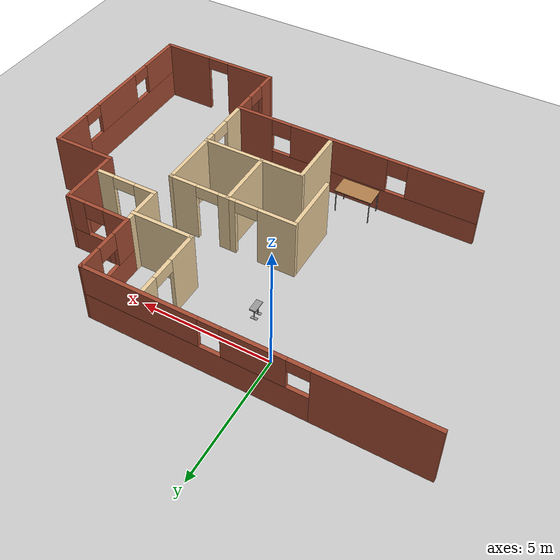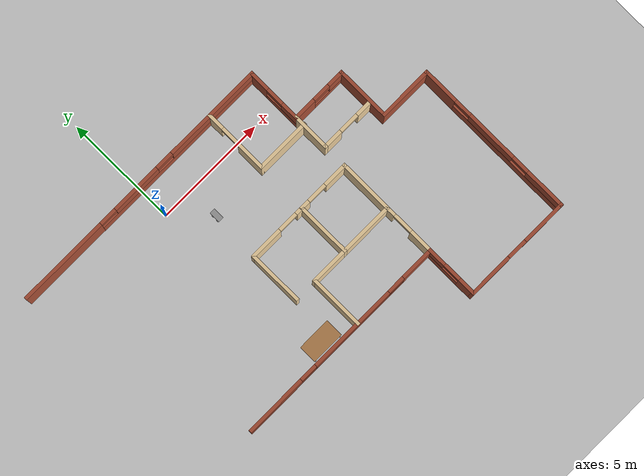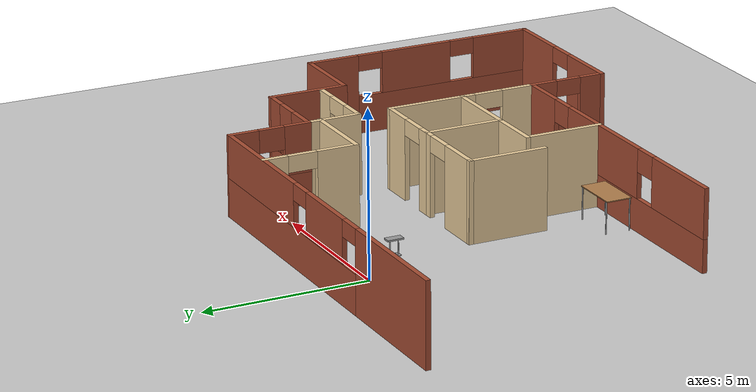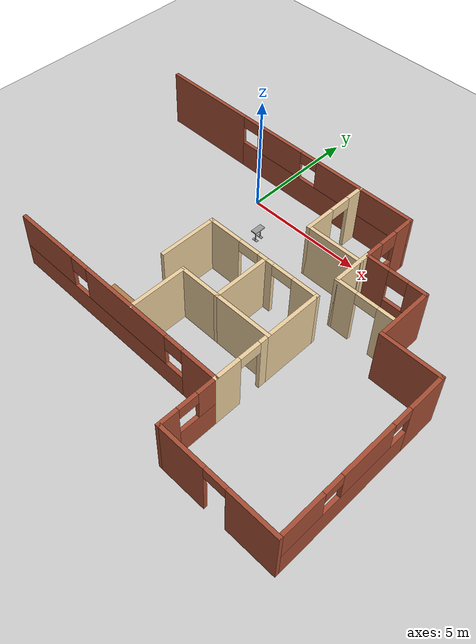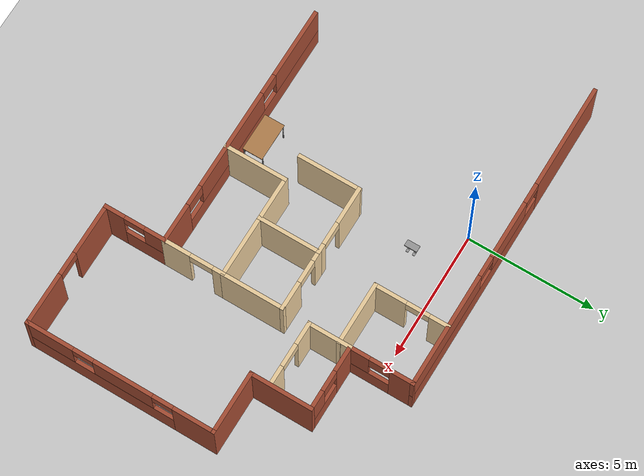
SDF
<sdf version="1.6">
 <world name="default">
  <model name="ground_plane">
   <static>1</static>
   <link name="link">
    <collision name="collision">
     <geometry><plane><normal>0 0 1</normal><size>100 100</size></plane></geometry>
     <surface>
      <contact><collide_bitmask>65535</collide_bitmask></contact>
      <friction><ode><mu>100</mu><mu2>50</mu2></ode></friction>
     </surface>
    </collision>
    <visual name="visual">
     <cast_shadows>0</cast_shadows>
     <geometry><plane><normal>0 0 1</normal><size>100 100</size></plane></geometry>
     <material>
      <script><uri>file://media/materials/scripts/gazebo.material</uri><name>Gazebo/Grey</name></script>
     </material>
    </visual>
   </link>
  </model>
  <model name="HumanoidRobot">
   <link name="link_0">
    <pose>0 0 0.297 0 -0 0</pose>
    <inertial>
     <mass>1</mass>
     <inertia>
      <ixx>0.166667</ixx>
      <ixy>0</ixy>
      <ixz>0</ixz>
      <iyy>0.166667</iyy>
      <iyz>0</iyz>
      <izz>0.166667</izz>
     </inertia>
    </inertial>
    <visual name="visual">
     <geometry><box><size>0.25 0.5 0.05</size></box></geometry>
     <material>
      <lighting>1</lighting>
      <script><uri>file://media/materials/scripts/gazebo.material</uri><name>Gazebo/Grey</name></script>
      <shader type="pixel"><normal_map>__default__</normal_map></shader>
      <ambient>0.3 0.3 0.3 1</ambient>
      <diffuse>0.7 0.7 0.7 1</diffuse>
      <specular>0.01 0.01 0.01 1</specular>
      <emissive>0 0 0 1</emissive>
     </material>
    </visual>
    <collision name="collision">
     <geometry><box><size>0.25 0.5 0.05</size></box></geometry>
     <surface>
      <friction>
       <ode><mu>1</mu><mu2>1</mu2><fdir1>0 0 0</fdir1><slip1>0</slip1><slip2>0</slip2></ode>
       <torsional>
        <coefficient>1</coefficient>
        <patch_radius>0</patch_radius>
        <surface_radius>0</surface_radius>
        <use_patch_radius>1</use_patch_radius>
        <ode><slip>0</slip></ode>
       </torsional>
      </friction>
      <bounce><restitution_coefficient>0</restitution_coefficient><threshold>1e+06</threshold></bounce>
      <contact>
       <collide_without_contact>0</collide_without_contact>
       <collide_without_contact_bitmask>1</collide_without_contact_bitmask>
       <collide_bitmask>1</collide_bitmask>
       <ode>
        <soft_cfm>0</soft_cfm>
        <soft_erp>0.2</soft_erp>
        <kp>1e+13</kp>
        <kd>1</kd>
        <max_vel>0.01</max_vel>
        <min_depth>0</min_depth>
       </ode>
       <bullet>
        <split_impulse>1</split_impulse>
        <split_impulse_penetration_threshold>-0.01</split_impulse_penetration_threshold>
        <soft_cfm>0</soft_cfm>
        <soft_erp>0.2</soft_erp>
        <kp>1e+13</kp>
        <kd>1</kd>
       </bullet>
      </contact>
     </surface>
    </collision>
   </link>
   <link name="link_1">
    <pose>0 -0.13 -0.193 0 -0 0</pose>
    <inertial>
     <mass>1</mass>
     <inertia>
      <ixx>0.166667</ixx>
      <ixy>0</ixy>
      <ixz>0</ixz>
      <iyy>0.166667</iyy>
      <iyz>0</iyz>
      <izz>0.166667</izz>
     </inertia>
    </inertial>
    <visual name="visual">
     <geometry><box><size>0.25 0.1 0.02</size></box></geometry>
     <material>
      <lighting>1</lighting>
      <script><uri>file://media/materials/scripts/gazebo.material</uri><name>Gazebo/Grey</name></script>
      <shader type="pixel"><normal_map>__default__</normal_map></shader>
      <ambient>0.3 0.3 0.3 1</ambient>
      <diffuse>0.7 0.7 0.7 1</diffuse>
      <specular>0.01 0.01 0.01 1</specular>
      <emissive>0 0 0 1</emissive>
     </material>
    </visual>
    <collision name="collision">
     <geometry><box><size>0.25 0.1 0.02</size></box></geometry>
     <surface>
      <friction>
       <ode><mu>1</mu><mu2>1</mu2><fdir1>0 0 0</fdir1><slip1>0</slip1><slip2>0</slip2></ode>
       <torsional>
        <coefficient>1</coefficient>
        <patch_radius>0</patch_radius>
        <surface_radius>0</surface_radius>
        <use_patch_radius>1</use_patch_radius>
        <ode><slip>0</slip></ode>
       </torsional>
      </friction>
      <bounce><restitution_coefficient>0</restitution_coefficient><threshold>1e+06</threshold></bounce>
      <contact>
       <collide_without_contact>0</collide_without_contact>
       <collide_without_contact_bitmask>1</collide_without_contact_bitmask>
       <collide_bitmask>1</collide_bitmask>
       <ode>
        <soft_cfm>0</soft_cfm>
        <soft_erp>0.2</soft_erp>
        <kp>1e+13</kp>
        <kd>1</kd>
        <max_vel>0.01</max_vel>
        <min_depth>0</min_depth>
       </ode>
       <bullet>
        <split_impulse>1</split_impulse>
        <split_impulse_penetration_threshold>-0.01</split_impulse_penetration_threshold>
        <soft_cfm>0</soft_cfm>
        <soft_erp>0.2</soft_erp>
        <kp>1e+13</kp>
        <kd>1</kd>
       </bullet>
      </contact>
     </surface>
    </collision>
   </link>
   <link name="link_1_clone">
    <pose>0 0.13 -0.193 0 -0 0</pose>
    <inertial>
     <mass>1</mass>
     <inertia>
      <ixx>0.166667</ixx>
      <ixy>0</ixy>
      <ixz>0</ixz>
      <iyy>0.166667</iyy>
      <iyz>0</iyz>
      <izz>0.166667</izz>
     </inertia>
    </inertial>
    <visual name="visual">
     <geometry><box><size>0.25 0.1 0.02</size></box></geometry>
     <material>
      <lighting>1</lighting>
      <script><uri>file://media/materials/scripts/gazebo.material</uri><name>Gazebo/Grey</name></script>
      <shader type="pixel"><normal_map>__default__</normal_map></shader>
      <ambient>0.3 0.3 0.3 1</ambient>
      <diffuse>0.7 0.7 0.7 1</diffuse>
      <specular>0.01 0.01 0.01 1</specular>
      <emissive>0 0 0 1</emissive>
     </material>
    </visual>
    <collision name="collision">
     <geometry><box><size>0.25 0.1 0.02</size></box></geometry>
     <surface>
      <friction>
       <ode><mu>1</mu><mu2>1</mu2><fdir1>0 0 0</fdir1><slip1>0</slip1><slip2>0</slip2></ode>
       <torsional>
        <coefficient>1</coefficient>
        <patch_radius>0</patch_radius>
        <surface_radius>0</surface_radius>
        <use_patch_radius>1</use_patch_radius>
        <ode><slip>0</slip></ode>
       </torsional>
      </friction>
      <bounce><restitution_coefficient>0</restitution_coefficient><threshold>1e+06</threshold></bounce>
      <contact>
       <collide_without_contact>0</collide_without_contact>
       <collide_without_contact_bitmask>1</collide_without_contact_bitmask>
       <collide_bitmask>1</collide_bitmask>
       <ode>
        <soft_cfm>0</soft_cfm>
        <soft_erp>0.2</soft_erp>
        <kp>1e+13</kp>
        <kd>1</kd>
        <max_vel>0.01</max_vel>
        <min_depth>0</min_depth>
       </ode>
       <bullet>
        <split_impulse>1</split_impulse>
        <split_impulse_penetration_threshold>-0.01</split_impulse_penetration_threshold>
        <soft_cfm>0</soft_cfm>
        <soft_erp>0.2</soft_erp>
        <kp>1e+13</kp>
        <kd>1</kd>
       </bullet>
      </contact>
     </surface>
    </collision>
   </link>
   <link name="link_2">
    <pose>0 -0.13 0.0445 0 -0 0</pose>
    <inertial>
     <mass>1</mass>
     <inertia><ixx>0.145833</ixx><ixy>0</ixy><ixz>0</ixz><iyy>0.145833</iyy><iyz>0</iyz><izz>0.125</izz></inertia>
    </inertial>
    <visual name="visual">
     <geometry><cylinder><radius>0.02</radius><length>0.455</length></cylinder></geometry>
     <material>
      <lighting>1</lighting>
      <script><uri>file://media/materials/scripts/gazebo.material</uri><name>Gazebo/Grey</name></script>
      <shader type="pixel"><normal_map>__default__</normal_map></shader>
      <ambient>0.3 0.3 0.3 1</ambient>
      <diffuse>0.7 0.7 0.7 1</diffuse>
      <specular>0.01 0.01 0.01 1</specular>
      <emissive>0 0 0 1</emissive>
     </material>
    </visual>
    <collision name="collision">
     <geometry><cylinder><radius>0.02</radius><length>0.455</length></cylinder></geometry>
     <surface>
      <friction>
       <ode><mu>1</mu><mu2>1</mu2><fdir1>0 0 0</fdir1><slip1>0</slip1><slip2>0</slip2></ode>
       <torsional>
        <coefficient>1</coefficient>
        <patch_radius>0</patch_radius>
        <surface_radius>0</surface_radius>
        <use_patch_radius>1</use_patch_radius>
        <ode><slip>0</slip></ode>
       </torsional>
      </friction>
      <bounce><restitution_coefficient>0</restitution_coefficient><threshold>1e+06</threshold></bounce>
      <contact>
       <collide_without_contact>0</collide_without_contact>
       <collide_without_contact_bitmask>1</collide_without_contact_bitmask>
       <collide_bitmask>1</collide_bitmask>
       <ode>
        <soft_cfm>0</soft_cfm>
        <soft_erp>0.2</soft_erp>
        <kp>1e+13</kp>
        <kd>1</kd>
        <max_vel>0.01</max_vel>
        <min_depth>0</min_depth>
       </ode>
       <bullet>
        <split_impulse>1</split_impulse>
        <split_impulse_penetration_threshold>-0.01</split_impulse_penetration_threshold>
        <soft_cfm>0</soft_cfm>
        <soft_erp>0.2</soft_erp>
        <kp>1e+13</kp>
        <kd>1</kd>
       </bullet>
      </contact>
     </surface>
    </collision>
   </link>
   <link name="link_2_clone">
    <pose>0 0.13 0.0445 0 -0 0</pose>
    <inertial>
     <mass>1</mass>
     <inertia><ixx>0.145833</ixx><ixy>0</ixy><ixz>0</ixz><iyy>0.145833</iyy><iyz>0</iyz><izz>0.125</izz></inertia>
    </inertial>
    <visual name="visual">
     <geometry><cylinder><radius>0.02</radius><length>0.455</length></cylinder></geometry>
     <material>
      <lighting>1</lighting>
      <script><uri>file://media/materials/scripts/gazebo.material</uri><name>Gazebo/Grey</name></script>
      <shader type="pixel"><normal_map>__default__</normal_map></shader>
      <ambient>0.3 0.3 0.3 1</ambient>
      <diffuse>0.7 0.7 0.7 1</diffuse>
      <specular>0.01 0.01 0.01 1</specular>
      <emissive>0 0 0 1</emissive>
     </material>
    </visual>
    <collision name="collision">
     <geometry><cylinder><radius>0.02</radius><length>0.455</length></cylinder></geometry>
     <surface>
      <friction>
       <ode><mu>1</mu><mu2>1</mu2><fdir1>0 0 0</fdir1><slip1>0</slip1><slip2>0</slip2></ode>
       <torsional>
        <coefficient>1</coefficient>
        <patch_radius>0</patch_radius>
        <surface_radius>0</surface_radius>
        <use_patch_radius>1</use_patch_radius>
        <ode><slip>0</slip></ode>
       </torsional>
      </friction>
      <bounce><restitution_coefficient>0</restitution_coefficient><threshold>1e+06</threshold></bounce>
      <contact>
       <collide_without_contact>0</collide_without_contact>
       <collide_without_contact_bitmask>1</collide_without_contact_bitmask>
       <collide_bitmask>1</collide_bitmask>
       <ode>
        <soft_cfm>0</soft_cfm>
        <soft_erp>0.2</soft_erp>
        <kp>1e+13</kp>
        <kd>1</kd>
        <max_vel>0.01</max_vel>
        <min_depth>0</min_depth>
       </ode>
       <bullet>
        <split_impulse>1</split_impulse>
        <split_impulse_penetration_threshold>-0.01</split_impulse_penetration_threshold>
        <soft_cfm>0</soft_cfm>
        <soft_erp>0.2</soft_erp>
        <kp>1e+13</kp>
        <kd>1</kd>
       </bullet>
      </contact>
     </surface>
    </collision>
   </link>
   <joint name="link_0_JOINT_0" type="fixed">
    <parent>link_0</parent>
    <child>link_2</child>
    <physics>
     <ode><limit><cfm>0</cfm><erp>0.2</erp></limit><suspension><cfm>0</cfm><erp>0.2</erp></suspension></ode>
    </physics>
   </joint>
   <joint name="link_0_JOINT_1" type="fixed">
    <parent>link_0</parent>
    <child>link_2_clone</child>
    <physics>
     <ode><limit><cfm>0</cfm><erp>0.2</erp></limit><suspension><cfm>0</cfm><erp>0.2</erp></suspension></ode>
    </physics>
   </joint>
   <joint name="link_2_JOINT_2" type="fixed">
    <parent>link_2</parent>
    <child>link_1</child>
    <physics>
     <ode><limit><cfm>0</cfm><erp>0.2</erp></limit><suspension><cfm>0</cfm><erp>0.2</erp></suspension></ode>
    </physics>
   </joint>
   <joint name="link_2_clone_JOINT_3" type="fixed">
    <parent>link_2_clone</parent>
    <child>link_1_clone</child>
    <physics>
     <ode><limit><cfm>0</cfm><erp>0.2</erp></limit><suspension><cfm>0</cfm><erp>0.2</erp></suspension></ode>
    </physics>
   </joint>
   <static>0</static>
   <pose>1.40793 -1.46037 0.203 -2e-06 -0 0.002952</pose>
  </model>
  <model name="Building">
   <pose>1.29293 -4.72878 0 0 -0 0</pose>
   <link name="Wall_1">
    <pose>-1.24984 6.0735 0 0 0 -3.9e-05</pose>
    <visual name="Wall_1_Visual_0">
     <pose>-4.19104 0 1.25 0 -0 0</pose>
     <geometry><box><size>4.11792 0.15 2.5</size></box></geometry>
     <material>
      <script><uri>file://media/materials/scripts/gazebo.material</uri><name>Gazebo/Bricks</name></script>
      <ambient>1 1 1 1</ambient>
     </material>
     <meta><layer>0</layer></meta>
    </visual>
    <collision name="Wall_1_Collision_0">
     <geometry><box><size>4.11792 0.15 2.5</size></box></geometry>
     <pose>-4.19104 0 1.25 0 -0 0</pose>
    </collision>
    <visual name="Wall_1_Visual_1">
     <pose>2.05896 0 0.6 0 -0 0</pose>
     <geometry><box><size>8.38208 0.15 1.2</size></box></geometry>
     <material>
      <script><uri>file://media/materials/scripts/gazebo.material</uri><name>Gazebo/Bricks</name></script>
      <ambient>1 1 1 1</ambient>
     </material>
     <meta><layer>0</layer></meta>
    </visual>
    <collision name="Wall_1_Collision_1">
     <geometry><box><size>8.38208 0.15 1.2</size></box></geometry>
     <pose>2.05896 0 0.6 0 -0 0</pose>
    </collision>
    <visual name="Wall_1_Visual_2">
     <pose>-0.189268 0 1.85 0 -0 0</pose>
     <geometry><box><size>2.28562 0.15 1.3</size></box></geometry>
     <material>
      <script><uri>file://media/materials/scripts/gazebo.material</uri><name>Gazebo/Bricks</name></script>
      <ambient>1 1 1 1</ambient>
     </material>
     <meta><layer>0</layer></meta>
    </visual>
    <collision name="Wall_1_Collision_2">
     <geometry><box><size>2.28562 0.15 1.3</size></box></geometry>
     <pose>-0.189268 0 1.85 0 -0 0</pose>
    </collision>
    <visual name="Wall_1_Visual_3">
     <pose>4.00177 0 1.85 0 -0 0</pose>
     <geometry><box><size>4.49646 0.15 1.3</size></box></geometry>
     <material>
      <script><uri>file://media/materials/scripts/gazebo.material</uri><name>Gazebo/Bricks</name></script>
      <ambient>1 1 1 1</ambient>
     </material>
     <meta><layer>0</layer></meta>
    </visual>
    <collision name="Wall_1_Collision_3">
     <geometry><box><size>4.49646 0.15 1.3</size></box></geometry>
     <pose>4.00177 0 1.85 0 -0 0</pose>
    </collision>
    <visual name="Wall_1_Visual_4">
     <pose>-1.73208 0 2.25 0 -0 0</pose>
     <geometry><box><size>0.8 0.15 0.5</size></box></geometry>
     <material>
      <script><uri>file://media/materials/scripts/gazebo.material</uri><name>Gazebo/Bricks</name></script>
      <ambient>1 1 1 1</ambient>
     </material>
     <meta><layer>0</layer></meta>
    </visual>
    <collision name="Wall_1_Collision_4">
     <geometry><box><size>0.8 0.15 0.5</size></box></geometry>
     <pose>-1.73208 0 2.25 0 -0 0</pose>
    </collision>
    <visual name="Wall_1_Visual_5">
     <pose>1.35354 0 2.25 0 -0 0</pose>
     <geometry><box><size>0.8 0.15 0.5</size></box></geometry>
     <material>
      <script><uri>file://media/materials/scripts/gazebo.material</uri><name>Gazebo/Bricks</name></script>
      <ambient>1 1 1 1</ambient>
     </material>
     <meta><layer>0</layer></meta>
    </visual>
    <collision name="Wall_1_Collision_5">
     <geometry><box><size>0.8 0.15 0.5</size></box></geometry>
     <pose>1.35354 0 2.25 0 -0 0</pose>
    </collision>
   </link>
   <link name="Wall_10">
    <collision name="Wall_10_Collision">
     <geometry><box><size>2.5 0.15 2.5</size></box></geometry>
     <pose>0 0 1.25 0 -0 0</pose>
    </collision>
    <visual name="Wall_10_Visual">
     <pose>0 0 1.25 0 -0 0</pose>
     <geometry><box><size>2.5 0.15 2.5</size></box></geometry>
     <material>
      <script><uri>file://media/materials/scripts/gazebo.material</uri><name>Gazebo/Bricks</name></script>
      <ambient>1 1 1 1</ambient>
     </material>
     <meta><layer>0</layer></meta>
    </visual>
    <pose>8.6 1.27626 0 0 -0 0</pose>
   </link>
   <link name="Wall_12">
    <pose>9.775 -2.39874 0 0 0 -1.5708</pose>
    <visual name="Wall_12_Visual_0">
     <pose>-2.91894 0 1.25 0 -0 0</pose>
     <geometry><box><size>1.66211 0.15 2.5</size></box></geometry>
     <material>
      <script><uri>file://media/materials/scripts/gazebo.material</uri><name>Gazebo/Bricks</name></script>
      <ambient>1 1 1 1</ambient>
     </material>
     <meta><layer>0</layer></meta>
    </visual>
    <collision name="Wall_12_Collision_0">
     <geometry><box><size>1.66211 0.15 2.5</size></box></geometry>
     <pose>-2.91894 0 1.25 0 -0 0</pose>
    </collision>
    <visual name="Wall_12_Visual_1">
     <pose>0.831055 0 0.6 0 -0 0</pose>
     <geometry><box><size>5.83789 0.15 1.2</size></box></geometry>
     <material>
      <script><uri>file://media/materials/scripts/gazebo.material</uri><name>Gazebo/Bricks</name></script>
      <ambient>1 1 1 1</ambient>
     </material>
     <meta><layer>0</layer></meta>
    </visual>
    <collision name="Wall_12_Collision_1">
     <geometry><box><size>5.83789 0.15 1.2</size></box></geometry>
     <pose>0.831055 0 0.6 0 -0 0</pose>
    </collision>
    <visual name="Wall_12_Visual_2">
     <pose>-0.118478 0 1.85 0 -0 0</pose>
     <geometry><box><size>2.33882 0.15 1.3</size></box></geometry>
     <material>
      <script><uri>file://media/materials/scripts/gazebo.material</uri><name>Gazebo/Bricks</name></script>
      <ambient>1 1 1 1</ambient>
     </material>
     <meta><layer>0</layer></meta>
    </visual>
    <collision name="Wall_12_Collision_2">
     <geometry><box><size>2.33882 0.15 1.3</size></box></geometry>
     <pose>-0.118478 0 1.85 0 -0 0</pose>
    </collision>
    <visual name="Wall_12_Visual_3">
     <pose>2.80047 0 1.85 0 -0 0</pose>
     <geometry><box><size>1.89907 0.15 1.3</size></box></geometry>
     <material>
      <script><uri>file://media/materials/scripts/gazebo.material</uri><name>Gazebo/Bricks</name></script>
      <ambient>1 1 1 1</ambient>
     </material>
     <meta><layer>0</layer></meta>
    </visual>
    <collision name="Wall_12_Collision_3">
     <geometry><box><size>1.89907 0.15 1.3</size></box></geometry>
     <pose>2.80047 0 1.85 0 -0 0</pose>
    </collision>
    <visual name="Wall_12_Visual_4">
     <pose>-1.68789 0 2.25 0 -0 0</pose>
     <geometry><box><size>0.8 0.15 0.5</size></box></geometry>
     <material>
      <script><uri>file://media/materials/scripts/gazebo.material</uri><name>Gazebo/Bricks</name></script>
      <ambient>1 1 1 1</ambient>
     </material>
     <meta><layer>0</layer></meta>
    </visual>
    <collision name="Wall_12_Collision_4">
     <geometry><box><size>0.8 0.15 0.5</size></box></geometry>
     <pose>-1.68789 0 2.25 0 -0 0</pose>
    </collision>
    <visual name="Wall_12_Visual_5">
     <pose>1.45093 0 2.25 0 -0 0</pose>
     <geometry><box><size>0.8 0.15 0.5</size></box></geometry>
     <material>
      <script><uri>file://media/materials/scripts/gazebo.material</uri><name>Gazebo/Bricks</name></script>
      <ambient>1 1 1 1</ambient>
     </material>
     <meta><layer>0</layer></meta>
    </visual>
    <collision name="Wall_12_Collision_5">
     <geometry><box><size>0.8 0.15 0.5</size></box></geometry>
     <pose>1.45093 0 2.25 0 -0 0</pose>
    </collision>
   </link>
   <link name="Wall_14">
    <pose>7.35 -6.07374 0 0 -0 3.14159</pose>
    <visual name="Wall_14_Visual_0">
     <pose>-1.46948 0 1.25 0 -0 0</pose>
     <geometry><box><size>2.06104 0.15 2.5</size></box></geometry>
     <material>
      <script><uri>file://media/materials/scripts/gazebo.material</uri><name>Gazebo/Bricks</name></script>
      <ambient>1 1 1 1</ambient>
     </material>
     <meta><layer>0</layer></meta>
    </visual>
    <collision name="Wall_14_Collision_0">
     <geometry><box><size>2.06104 0.15 2.5</size></box></geometry>
     <pose>-1.46948 0 1.25 0 -0 0</pose>
    </collision>
    <visual name="Wall_14_Visual_1">
     <pose>1.48052 0 1.25 0 -0 0</pose>
     <geometry><box><size>2.03896 0.15 2.5</size></box></geometry>
     <material>
      <script><uri>file://media/materials/scripts/gazebo.material</uri><name>Gazebo/Bricks</name></script>
      <ambient>1 1 1 1</ambient>
     </material>
     <meta><layer>0</layer></meta>
    </visual>
    <collision name="Wall_14_Collision_1">
     <geometry><box><size>2.03896 0.15 2.5</size></box></geometry>
     <pose>1.48052 0 1.25 0 -0 0</pose>
    </collision>
    <visual name="Wall_14_Visual_2">
     <pose>0.011044 0 2.25 0 -0 0</pose>
     <geometry><box><size>0.9 0.15 0.5</size></box></geometry>
     <material>
      <script><uri>file://media/materials/scripts/gazebo.material</uri><name>Gazebo/Bricks</name></script>
      <ambient>1 1 1 1</ambient>
     </material>
     <meta><layer>0</layer></meta>
    </visual>
    <collision name="Wall_14_Collision_2">
     <geometry><box><size>0.9 0.15 0.5</size></box></geometry>
     <pose>0.011044 0 2.25 0 -0 0</pose>
    </collision>
   </link>
   <link name="Wall_16">
    <pose>4.925 -4.89874 0 0 -0 1.5708</pose>
    <visual name="Wall_16_Visual_0">
     <pose>-0.832471 0 1.25 0 -0 0</pose>
     <geometry><box><size>0.835058 0.15 2.5</size></box></geometry>
     <material>
      <script><uri>file://media/materials/scripts/gazebo.material</uri><name>Gazebo/Bricks</name></script>
      <ambient>1 1 1 1</ambient>
     </material>
     <meta><layer>0</layer></meta>
    </visual>
    <collision name="Wall_16_Collision_0">
     <geometry><box><size>0.835058 0.15 2.5</size></box></geometry>
     <pose>-0.832471 0 1.25 0 -0 0</pose>
    </collision>
    <visual name="Wall_16_Visual_1">
     <pose>0.417529 0 0.6 0 -0 0</pose>
     <geometry><box><size>1.66494 0.15 1.2</size></box></geometry>
     <material>
      <script><uri>file://media/materials/scripts/gazebo.material</uri><name>Gazebo/Bricks</name></script>
      <ambient>1 1 1 1</ambient>
     </material>
     <meta><layer>0</layer></meta>
    </visual>
    <collision name="Wall_16_Collision_1">
     <geometry><box><size>1.66494 0.15 1.2</size></box></geometry>
     <pose>0.417529 0 0.6 0 -0 0</pose>
    </collision>
    <visual name="Wall_16_Visual_2">
     <pose>0.817529 0 1.85 0 -0 0</pose>
     <geometry><box><size>0.864942 0.15 1.3</size></box></geometry>
     <material>
      <script><uri>file://media/materials/scripts/gazebo.material</uri><name>Gazebo/Bricks</name></script>
      <ambient>1 1 1 1</ambient>
     </material>
     <meta><layer>0</layer></meta>
    </visual>
    <collision name="Wall_16_Collision_2">
     <geometry><box><size>0.864942 0.15 1.3</size></box></geometry>
     <pose>0.817529 0 1.85 0 -0 0</pose>
    </collision>
    <visual name="Wall_16_Visual_3">
     <pose>-0.014942 0 2.25 0 -0 0</pose>
     <geometry><box><size>0.8 0.15 0.5</size></box></geometry>
     <material>
      <script><uri>file://media/materials/scripts/gazebo.material</uri><name>Gazebo/Bricks</name></script>
      <ambient>1 1 1 1</ambient>
     </material>
     <meta><layer>0</layer></meta>
    </visual>
    <collision name="Wall_16_Collision_3">
     <geometry><box><size>0.8 0.15 0.5</size></box></geometry>
     <pose>-0.014942 0 2.25 0 -0 0</pose>
    </collision>
   </link>
   <link name="Wall_18">
    <pose>1e-06 -3.72374 0 0 -0 3.14159</pose>
    <visual name="Wall_18_Visual_0">
     <pose>-4.21486 0 1.25 0 -0 0</pose>
     <geometry><box><size>1.57028 0.15 2.5</size></box></geometry>
     <material>
      <script><uri>file://media/materials/scripts/gazebo.material</uri><name>Gazebo/Bricks</name></script>
      <ambient>1 1 1 1</ambient>
     </material>
     <meta><layer>0</layer></meta>
    </visual>
    <collision name="Wall_18_Collision_0">
     <geometry><box><size>1.57028 0.15 2.5</size></box></geometry>
     <pose>-4.21486 0 1.25 0 -0 0</pose>
    </collision>
    <visual name="Wall_18_Visual_1">
     <pose>0.785138 0 0.5 0 -0 0</pose>
     <geometry><box><size>8.42972 0.15 1</size></box></geometry>
     <material>
      <script><uri>file://media/materials/scripts/gazebo.material</uri><name>Gazebo/Bricks</name></script>
      <ambient>1 1 1 1</ambient>
     </material>
     <meta><layer>0</layer></meta>
    </visual>
    <collision name="Wall_18_Collision_1">
     <geometry><box><size>8.42972 0.15 1</size></box></geometry>
     <pose>0.785138 0 0.5 0 -0 0</pose>
    </collision>
    <visual name="Wall_18_Visual_2">
     <pose>-0.622407 0 1.75 0 -0 0</pose>
     <geometry><box><size>4.01464 0.15 1.5</size></box></geometry>
     <material>
      <script><uri>file://media/materials/scripts/gazebo.material</uri><name>Gazebo/Bricks</name></script>
      <ambient>1 1 1 1</ambient>
     </material>
     <meta><layer>0</layer></meta>
    </visual>
    <collision name="Wall_18_Collision_2">
     <geometry><box><size>4.01464 0.15 1.5</size></box></geometry>
     <pose>-0.622407 0 1.75 0 -0 0</pose>
    </collision>
    <visual name="Wall_18_Visual_3">
     <pose>3.59246 0 1.75 0 -0 0</pose>
     <geometry><box><size>2.81509 0.15 1.5</size></box></geometry>
     <material>
      <script><uri>file://media/materials/scripts/gazebo.material</uri><name>Gazebo/Bricks</name></script>
      <ambient>1 1 1 1</ambient>
     </material>
     <meta><layer>0</layer></meta>
    </visual>
    <collision name="Wall_18_Collision_3">
     <geometry><box><size>2.81509 0.15 1.5</size></box></geometry>
     <pose>3.59246 0 1.75 0 -0 0</pose>
    </collision>
    <visual name="Wall_18_Visual_4">
     <pose>-3.02973 0 2.15 0 -0 0</pose>
     <geometry><box><size>0.8 0.15 0.7</size></box></geometry>
     <material>
      <script><uri>file://media/materials/scripts/gazebo.material</uri><name>Gazebo/Bricks</name></script>
      <ambient>1 1 1 1</ambient>
     </material>
     <meta><layer>0</layer></meta>
    </visual>
    <collision name="Wall_18_Collision_4">
     <geometry><box><size>0.8 0.15 0.7</size></box></geometry>
     <pose>-3.02973 0 2.15 0 -0 0</pose>
    </collision>
    <visual name="Wall_18_Visual_5">
     <pose>1.78491 0 2.15 0 -0 0</pose>
     <geometry><box><size>0.8 0.15 0.7</size></box></geometry>
     <material>
      <script><uri>file://media/materials/scripts/gazebo.material</uri><name>Gazebo/Bricks</name></script>
      <ambient>1 1 1 1</ambient>
     </material>
     <meta><layer>0</layer></meta>
    </visual>
    <collision name="Wall_18_Collision_5">
     <geometry><box><size>0.8 0.15 0.7</size></box></geometry>
     <pose>1.78491 0 2.15 0 -0 0</pose>
    </collision>
   </link>
   <link name="Wall_2">
    <pose>4.925 4.84976 0 0 0 -1.5708</pose>
    <visual name="Wall_2_Visual_0">
     <pose>-0.822065 0 1.25 0 -0 0</pose>
     <geometry><box><size>0.952869 0.15 2.5</size></box></geometry>
     <material>
      <script><uri>file://media/materials/scripts/gazebo.material</uri><name>Gazebo/Bricks</name></script>
      <ambient>1 1 1 1</ambient>
     </material>
     <meta><layer>0</layer></meta>
    </visual>
    <collision name="Wall_2_Collision_0">
     <geometry><box><size>0.952869 0.15 2.5</size></box></geometry>
     <pose>-0.822065 0 1.25 0 -0 0</pose>
    </collision>
    <visual name="Wall_2_Visual_1">
     <pose>0.476435 0 0.5 0 -0 0</pose>
     <geometry><box><size>1.64413 0.15 1</size></box></geometry>
     <material>
      <script><uri>file://media/materials/scripts/gazebo.material</uri><name>Gazebo/Bricks</name></script>
      <ambient>1 1 1 1</ambient>
     </material>
     <meta><layer>0</layer></meta>
    </visual>
    <collision name="Wall_2_Collision_1">
     <geometry><box><size>1.64413 0.15 1</size></box></geometry>
     <pose>0.476435 0 0.5 0 -0 0</pose>
    </collision>
    <visual name="Wall_2_Visual_2">
     <pose>0.876435 0 1.75 0 -0 0</pose>
     <geometry><box><size>0.844131 0.15 1.5</size></box></geometry>
     <material>
      <script><uri>file://media/materials/scripts/gazebo.material</uri><name>Gazebo/Bricks</name></script>
      <ambient>1 1 1 1</ambient>
     </material>
     <meta><layer>0</layer></meta>
    </visual>
    <collision name="Wall_2_Collision_2">
     <geometry><box><size>0.844131 0.15 1.5</size></box></geometry>
     <pose>0.876435 0 1.75 0 -0 0</pose>
    </collision>
    <visual name="Wall_2_Visual_3">
     <pose>0.054369 0 2.15 0 -0 0</pose>
     <geometry><box><size>0.8 0.15 0.7</size></box></geometry>
     <material>
      <script><uri>file://media/materials/scripts/gazebo.material</uri><name>Gazebo/Bricks</name></script>
      <ambient>1 1 1 1</ambient>
     </material>
     <meta><layer>0</layer></meta>
    </visual>
    <collision name="Wall_2_Collision_3">
     <geometry><box><size>0.8 0.15 0.7</size></box></geometry>
     <pose>0.054369 0 2.15 0 -0 0</pose>
    </collision>
   </link>
   <link name="Wall_3">
    <pose>6.175 3.62626 0 0 -0 0</pose>
    <visual name="Wall_3_Visual_0">
     <pose>-0.799225 0 1.25 0 -0 0</pose>
     <geometry><box><size>1.05155 0.15 2.5</size></box></geometry>
     <material>
      <script><uri>file://media/materials/scripts/gazebo.material</uri><name>Gazebo/Bricks</name></script>
      <ambient>1 1 1 1</ambient>
     </material>
     <meta><layer>0</layer></meta>
    </visual>
    <collision name="Wall_3_Collision_0">
     <geometry><box><size>1.05155 0.15 2.5</size></box></geometry>
     <pose>-0.799225 0 1.25 0 -0 0</pose>
    </collision>
    <visual name="Wall_3_Visual_1">
     <pose>0.525775 0 0.5 0 -0 0</pose>
     <geometry><box><size>1.59845 0.15 1</size></box></geometry>
     <material>
      <script><uri>file://media/materials/scripts/gazebo.material</uri><name>Gazebo/Bricks</name></script>
      <ambient>1 1 1 1</ambient>
     </material>
     <meta><layer>0</layer></meta>
    </visual>
    <collision name="Wall_3_Collision_1">
     <geometry><box><size>1.59845 0.15 1</size></box></geometry>
     <pose>0.525775 0 0.5 0 -0 0</pose>
    </collision>
    <visual name="Wall_3_Visual_2">
     <pose>0.925775 0 1.75 0 -0 0</pose>
     <geometry><box><size>0.79845 0.15 1.5</size></box></geometry>
     <material>
      <script><uri>file://media/materials/scripts/gazebo.material</uri><name>Gazebo/Bricks</name></script>
      <ambient>1 1 1 1</ambient>
     </material>
     <meta><layer>0</layer></meta>
    </visual>
    <collision name="Wall_3_Collision_2">
     <geometry><box><size>0.79845 0.15 1.5</size></box></geometry>
     <pose>0.925775 0 1.75 0 -0 0</pose>
    </collision>
    <visual name="Wall_3_Visual_3">
     <pose>0.12655 0 2.15 0 -0 0</pose>
     <geometry><box><size>0.8 0.15 0.7</size></box></geometry>
     <material>
      <script><uri>file://media/materials/scripts/gazebo.material</uri><name>Gazebo/Bricks</name></script>
      <ambient>1 1 1 1</ambient>
     </material>
     <meta><layer>0</layer></meta>
    </visual>
    <collision name="Wall_3_Collision_3">
     <geometry><box><size>0.8 0.15 0.7</size></box></geometry>
     <pose>0.12655 0 2.15 0 -0 0</pose>
    </collision>
   </link>
   <link name="Wall_34">
    <collision name="Wall_34_Collision">
     <geometry><box><size>2.5 0.15 2.5</size></box></geometry>
     <pose>0 0 1.25 0 -0 0</pose>
    </collision>
    <visual name="Wall_34_Visual">
     <pose>0 0 1.25 0 -0 0</pose>
     <geometry><box><size>2.5 0.15 2.5</size></box></geometry>
     <material>
      <script><uri>file://media/materials/scripts/gazebo.material</uri><name>Gazebo/Grey</name></script>
      <ambient>0.921569 0.807843 0.615686 1</ambient>
     </material>
     <meta><layer>0</layer></meta>
    </visual>
    <pose>0.925001 -2.54874 0 0 0 -1.5708</pose>
   </link>
   <link name="Wall_36">
    <pose>4.925 -2.54874 0 0 -0 1.5708</pose>
    <visual name="Wall_36_Visual_0">
     <pose>-0.689161 0 1.25 0 -0 0</pose>
     <geometry><box><size>1.12168 0.15 2.5</size></box></geometry>
     <material>
      <script><uri>file://media/materials/scripts/gazebo.material</uri><name>Gazebo/Grey</name></script>
      <ambient>0.921569 0.807843 0.615686 1</ambient>
     </material>
     <meta><layer>0</layer></meta>
    </visual>
    <collision name="Wall_36_Collision_0">
     <geometry><box><size>1.12168 0.15 2.5</size></box></geometry>
     <pose>-0.689161 0 1.25 0 -0 0</pose>
    </collision>
    <visual name="Wall_36_Visual_1">
     <pose>1.01084 0 1.25 0 -0 0</pose>
     <geometry><box><size>0.478322 0.15 2.5</size></box></geometry>
     <material>
      <script><uri>file://media/materials/scripts/gazebo.material</uri><name>Gazebo/Grey</name></script>
      <ambient>0.921569 0.807843 0.615686 1</ambient>
     </material>
     <meta><layer>0</layer></meta>
    </visual>
    <collision name="Wall_36_Collision_1">
     <geometry><box><size>0.478322 0.15 2.5</size></box></geometry>
     <pose>1.01084 0 1.25 0 -0 0</pose>
    </collision>
    <visual name="Wall_36_Visual_2">
     <pose>0.321678 0 2.25 0 -0 0</pose>
     <geometry><box><size>0.9 0.15 0.5</size></box></geometry>
     <material>
      <script><uri>file://media/materials/scripts/gazebo.material</uri><name>Gazebo/Grey</name></script>
      <ambient>0.921569 0.807843 0.615686 1</ambient>
     </material>
     <meta><layer>0</layer></meta>
    </visual>
    <collision name="Wall_36_Collision_2">
     <geometry><box><size>0.9 0.15 0.5</size></box></geometry>
     <pose>0.321678 0 2.25 0 -0 0</pose>
    </collision>
   </link>
   <link name="Wall_38">
    <collision name="Wall_38_Collision">
     <geometry><box><size>4.15 0.15 2.5</size></box></geometry>
     <pose>0 0 1.25 0 -0 0</pose>
    </collision>
    <visual name="Wall_38_Visual">
     <pose>0 0 1.25 0 -0 0</pose>
     <geometry><box><size>4.15 0.15 2.5</size></box></geometry>
     <material>
      <script><uri>file://media/materials/scripts/gazebo.material</uri><name>Gazebo/Grey</name></script>
      <ambient>0.921569 0.807843 0.615686 1</ambient>
     </material>
     <meta><layer>0</layer></meta>
    </visual>
    <pose>2.925 -1.37374 0 0 -0 3.14159</pose>
   </link>
   <link name="Wall_42">
    <collision name="Wall_42_Collision">
     <geometry><box><size>2.5 0.15 2.5</size></box></geometry>
     <pose>0 0 1.25 0 -0 0</pose>
    </collision>
    <visual name="Wall_42_Visual">
     <pose>0 0 1.25 0 -0 0</pose>
     <geometry><box><size>2.5 0.15 2.5</size></box></geometry>
     <material>
      <script><uri>file://media/materials/scripts/gazebo.material</uri><name>Gazebo/Grey</name></script>
      <ambient>0.921569 0.807843 0.615686 1</ambient>
     </material>
     <meta><layer>0</layer></meta>
    </visual>
    <pose>4.925 -0.198743 0 0 -0 1.5708</pose>
   </link>
   <link name="Wall_48">
    <pose>3.75 0.976257 0 0 -0 3.14159</pose>
    <visual name="Wall_48_Visual_0">
     <pose>-0.676064 0 1.25 0 -0 0</pose>
     <geometry><box><size>1.14787 0.15 2.5</size></box></geometry>
     <material>
      <script><uri>file://media/materials/scripts/gazebo.material</uri><name>Gazebo/Grey</name></script>
      <ambient>0.921569 0.807843 0.615686 1</ambient>
     </material>
     <meta><layer>0</layer></meta>
    </visual>
    <collision name="Wall_48_Collision_0">
     <geometry><box><size>1.14787 0.15 2.5</size></box></geometry>
     <pose>-0.676064 0 1.25 0 -0 0</pose>
    </collision>
    <visual name="Wall_48_Visual_1">
     <pose>1.02394 0 1.25 0 -0 0</pose>
     <geometry><box><size>0.452128 0.15 2.5</size></box></geometry>
     <material>
      <script><uri>file://media/materials/scripts/gazebo.material</uri><name>Gazebo/Grey</name></script>
      <ambient>0.921569 0.807843 0.615686 1</ambient>
     </material>
     <meta><layer>0</layer></meta>
    </visual>
    <collision name="Wall_48_Collision_1">
     <geometry><box><size>0.452128 0.15 2.5</size></box></geometry>
     <pose>1.02394 0 1.25 0 -0 0</pose>
    </collision>
    <visual name="Wall_48_Visual_2">
     <pose>0.347872 0 2.25 0 -0 0</pose>
     <geometry><box><size>0.9 0.15 0.5</size></box></geometry>
     <material>
      <script><uri>file://media/materials/scripts/gazebo.material</uri><name>Gazebo/Grey</name></script>
      <ambient>0.921569 0.807843 0.615686 1</ambient>
     </material>
     <meta><layer>0</layer></meta>
    </visual>
    <collision name="Wall_48_Collision_2">
     <geometry><box><size>0.9 0.15 0.5</size></box></geometry>
     <pose>0.347872 0 2.25 0 -0 0</pose>
    </collision>
   </link>
   <link name="Wall_50">
    <collision name="Wall_50_Collision">
     <geometry><box><size>2.5 0.15 2.5</size></box></geometry>
     <pose>0 0 1.25 0 -0 0</pose>
    </collision>
    <visual name="Wall_50_Visual">
     <pose>0 0 1.25 0 -0 0</pose>
     <geometry><box><size>2.5 0.15 2.5</size></box></geometry>
     <material>
      <script><uri>file://media/materials/scripts/gazebo.material</uri><name>Gazebo/Grey</name></script>
      <ambient>0.921569 0.807843 0.615686 1</ambient>
     </material>
     <meta><layer>0</layer></meta>
    </visual>
    <pose>2.575 -0.198743 0 0 0 -1.5708</pose>
   </link>
   <link name="Wall_54">
    <collision name="Wall_54_Collision">
     <geometry><box><size>2.5 0.15 2.5</size></box></geometry>
     <pose>0 0 1.25 0 -0 0</pose>
    </collision>
    <visual name="Wall_54_Visual">
     <pose>0 0 1.25 0 -0 0</pose>
     <geometry><box><size>2.5 0.15 2.5</size></box></geometry>
     <material>
      <script><uri>file://media/materials/scripts/gazebo.material</uri><name>Gazebo/Grey</name></script>
      <ambient>0.921569 0.807843 0.615686 1</ambient>
     </material>
     <meta><layer>0</layer></meta>
    </visual>
    <pose>-0.074999 -0.198743 0 0 0 -1.5708</pose>
   </link>
   <link name="Wall_56">
    <pose>1.25 0.976257 0 0 -0 0</pose>
    <visual name="Wall_56_Visual_0">
     <pose>-0.646942 0 1.25 0 -0 0</pose>
     <geometry><box><size>1.50612 0.15 2.5</size></box></geometry>
     <material>
      <script><uri>file://media/materials/scripts/gazebo.material</uri><name>Gazebo/Grey</name></script>
      <ambient>0.921569 0.807843 0.615686 1</ambient>
     </material>
     <meta><layer>0</layer></meta>
    </visual>
    <collision name="Wall_56_Collision_0">
     <geometry><box><size>1.50612 0.15 2.5</size></box></geometry>
     <pose>-0.646942 0 1.25 0 -0 0</pose>
    </collision>
    <visual name="Wall_56_Visual_1">
     <pose>1.20306 0 1.25 0 -0 0</pose>
     <geometry><box><size>0.393884 0.15 2.5</size></box></geometry>
     <material>
      <script><uri>file://media/materials/scripts/gazebo.material</uri><name>Gazebo/Grey</name></script>
      <ambient>0.921569 0.807843 0.615686 1</ambient>
     </material>
     <meta><layer>0</layer></meta>
    </visual>
    <collision name="Wall_56_Collision_1">
     <geometry><box><size>0.393884 0.15 2.5</size></box></geometry>
     <pose>1.20306 0 1.25 0 -0 0</pose>
    </collision>
    <visual name="Wall_56_Visual_2">
     <pose>0.556116 0 2.25 0 -0 0</pose>
     <geometry><box><size>0.9 0.15 0.5</size></box></geometry>
     <material>
      <script><uri>file://media/materials/scripts/gazebo.material</uri><name>Gazebo/Grey</name></script>
      <ambient>0.921569 0.807843 0.615686 1</ambient>
     </material>
     <meta><layer>0</layer></meta>
    </visual>
    <collision name="Wall_56_Collision_2">
     <geometry><box><size>0.9 0.15 0.5</size></box></geometry>
     <pose>0.556116 0 2.25 0 -0 0</pose>
    </collision>
   </link>
   <link name="Wall_8">
    <collision name="Wall_8_Collision">
     <geometry><box><size>2.5 0.15 2.5</size></box></geometry>
     <pose>0 0 1.25 0 -0 0</pose>
    </collision>
    <visual name="Wall_8_Visual">
     <pose>0 0 1.25 0 -0 0</pose>
     <geometry><box><size>2.5 0.15 2.5</size></box></geometry>
     <material>
      <script><uri>file://media/materials/scripts/gazebo.material</uri><name>Gazebo/Bricks</name></script>
      <ambient>1 1 1 1</ambient>
     </material>
     <meta><layer>0</layer></meta>
    </visual>
    <pose>7.425 2.45126 0 0 0 -1.5708</pose>
   </link>
   <link name="Wall_80">
    <pose>2.60412 4.6472 0 0 0 -1.5708</pose>
    <visual name="Wall_80_Visual_0">
     <pose>-1.1023 0 1.25 0 -0 0</pose>
     <geometry><box><size>0.795409 0.15 2.5</size></box></geometry>
     <material>
      <script><uri>file://media/materials/scripts/gazebo.material</uri><name>Gazebo/Grey</name></script>
      <ambient>0.921569 0.807843 0.615686 1</ambient>
     </material>
     <meta><layer>0</layer></meta>
    </visual>
    <collision name="Wall_80_Collision_0">
     <geometry><box><size>0.795409 0.15 2.5</size></box></geometry>
     <pose>-1.1023 0 1.25 0 -0 0</pose>
    </collision>
    <visual name="Wall_80_Visual_1">
     <pose>0.847705 0 1.25 0 -0 0</pose>
     <geometry><box><size>1.30459 0.15 2.5</size></box></geometry>
     <material>
      <script><uri>file://media/materials/scripts/gazebo.material</uri><name>Gazebo/Grey</name></script>
      <ambient>0.921569 0.807843 0.615686 1</ambient>
     </material>
     <meta><layer>0</layer></meta>
    </visual>
    <collision name="Wall_80_Collision_1">
     <geometry><box><size>1.30459 0.15 2.5</size></box></geometry>
     <pose>0.847705 0 1.25 0 -0 0</pose>
    </collision>
    <visual name="Wall_80_Visual_2">
     <pose>-0.254591 0 2.25 0 -0 0</pose>
     <geometry><box><size>0.9 0.15 0.5</size></box></geometry>
     <material>
      <script><uri>file://media/materials/scripts/gazebo.material</uri><name>Gazebo/Grey</name></script>
      <ambient>0.921569 0.807843 0.615686 1</ambient>
     </material>
     <meta><layer>0</layer></meta>
    </visual>
    <collision name="Wall_80_Collision_2">
     <geometry><box><size>0.9 0.15 0.5</size></box></geometry>
     <pose>-0.254591 0 2.25 0 -0 0</pose>
    </collision>
   </link>
   <link name="Wall_82">
    <collision name="Wall_82_Collision">
     <geometry><box><size>1.75 0.15 2.5</size></box></geometry>
     <pose>0 0 1.25 0 -0 0</pose>
    </collision>
    <visual name="Wall_82_Visual">
     <pose>0 0 1.25 0 -0 0</pose>
     <geometry><box><size>1.75 0.15 2.5</size></box></geometry>
     <material>
      <script><uri>file://media/materials/scripts/gazebo.material</uri><name>Gazebo/Grey</name></script>
      <ambient>0.921569 0.807843 0.615686 1</ambient>
     </material>
     <meta><layer>0</layer></meta>
    </visual>
    <pose>4.925 2.82626 0 0 0 -1.5708</pose>
   </link>
   <link name="Wall_83">
    <pose>6.1 2.02626 0 0 -0 0</pose>
    <visual name="Wall_83_Visual_0">
     <pose>-0.789126 0 1.25 0 -0 0</pose>
     <geometry><box><size>0.921749 0.15 2.5</size></box></geometry>
     <material>
      <script><uri>file://media/materials/scripts/gazebo.material</uri><name>Gazebo/Grey</name></script>
      <ambient>0.921569 0.807843 0.615686 1</ambient>
     </material>
     <meta><layer>0</layer></meta>
    </visual>
    <collision name="Wall_83_Collision_0">
     <geometry><box><size>0.921749 0.15 2.5</size></box></geometry>
     <pose>-0.789126 0 1.25 0 -0 0</pose>
    </collision>
    <visual name="Wall_83_Visual_1">
     <pose>0.910874 0 1.25 0 -0 0</pose>
     <geometry><box><size>0.678251 0.15 2.5</size></box></geometry>
     <material>
      <script><uri>file://media/materials/scripts/gazebo.material</uri><name>Gazebo/Grey</name></script>
      <ambient>0.921569 0.807843 0.615686 1</ambient>
     </material>
     <meta><layer>0</layer></meta>
    </visual>
    <collision name="Wall_83_Collision_1">
     <geometry><box><size>0.678251 0.15 2.5</size></box></geometry>
     <pose>0.910874 0 1.25 0 -0 0</pose>
    </collision>
    <visual name="Wall_83_Visual_2">
     <pose>0.121749 0 2.25 0 -0 0</pose>
     <geometry><box><size>0.9 0.15 0.5</size></box></geometry>
     <material>
      <script><uri>file://media/materials/scripts/gazebo.material</uri><name>Gazebo/Grey</name></script>
      <ambient>0.921569 0.807843 0.615686 1</ambient>
     </material>
     <meta><layer>0</layer></meta>
    </visual>
    <collision name="Wall_83_Collision_2">
     <geometry><box><size>0.9 0.15 0.5</size></box></geometry>
     <pose>0.121749 0 2.25 0 -0 0</pose>
    </collision>
   </link>
   <link name="Wall_85">
    <collision name="Wall_85_Collision">
     <geometry><box><size>2.5 0.15 2.5</size></box></geometry>
     <pose>0 0 1.25 0 -0 0</pose>
    </collision>
    <visual name="Wall_85_Visual">
     <pose>0 0 1.25 0 -0 0</pose>
     <geometry><box><size>2.5 0.15 2.5</size></box></geometry>
     <material>
      <script><uri>file://media/materials/scripts/gazebo.material</uri><name>Gazebo/Grey</name></script>
      <ambient>0.921569 0.807843 0.615686 1</ambient>
     </material>
     <meta><layer>0</layer></meta>
    </visual>
    <pose>3.77912 3.2222 0 0 -0 0</pose>
   </link>
   <static>1</static>
  </model>
  <model name="table_0">
   <static>1</static>
   <link name="link">
    <collision name="surface">
     <pose>0 0 1 0 -0 0</pose>
     <geometry><box><size>1.5 0.8 0.03</size></box></geometry>
     <surface><friction><ode><mu>0.6</mu><mu2>0.6</mu2></ode></friction></surface>
    </collision>
    <visual name="visual1">
     <pose>0 0 1 0 -0 0</pose>
     <geometry><box><size>1.5 0.8 0.03</size></box></geometry>
     <material>
      <script><uri>file://media/materials/scripts/gazebo.material</uri><name>Gazebo/Wood</name></script>
     </material>
    </visual>
    <collision name="front_left_leg">
     <pose>0.68 0.38 0.5 0 -0 0</pose>
     <geometry><cylinder><radius>0.02</radius><length>1</length></cylinder></geometry>
    </collision>
    <visual name="front_left_leg">
     <pose>0.68 0.38 0.5 0 -0 0</pose>
     <geometry><cylinder><radius>0.02</radius><length>1</length></cylinder></geometry>
     <material>
      <script><uri>file://media/materials/scripts/gazebo.material</uri><name>Gazebo/Grey</name></script>
     </material>
    </visual>
    <collision name="front_right_leg">
     <pose>0.68 -0.38 0.5 0 -0 0</pose>
     <geometry><cylinder><radius>0.02</radius><length>1</length></cylinder></geometry>
    </collision>
    <visual name="front_right_leg">
     <pose>0.68 -0.38 0.5 0 -0 0</pose>
     <geometry><cylinder><radius>0.02</radius><length>1</length></cylinder></geometry>
     <material>
      <script><uri>file://media/materials/scripts/gazebo.material</uri><name>Gazebo/Grey</name></script>
     </material>
    </visual>
    <collision name="back_right_leg">
     <pose>-0.68 -0.38 0.5 0 -0 0</pose>
     <geometry><cylinder><radius>0.02</radius><length>1</length></cylinder></geometry>
    </collision>
    <visual name="back_right_leg">
     <pose>-0.68 -0.38 0.5 0 -0 0</pose>
     <geometry><cylinder><radius>0.02</radius><length>1</length></cylinder></geometry>
     <material>
      <script><uri>file://media/materials/scripts/gazebo.material</uri><name>Gazebo/Grey</name></script>
     </material>
    </visual>
    <collision name="back_left_leg">
     <pose>-0.68 0.38 0.5 0 -0 0</pose>
     <geometry><cylinder><radius>0.02</radius><length>1</length></cylinder></geometry>
    </collision>
    <visual name="back_left_leg">
     <pose>-0.68 0.38 0.5 0 -0 0</pose>
     <geometry><cylinder><radius>0.02</radius><length>1</length></cylinder></geometry>
     <material>
      <script><uri>file://media/materials/scripts/gazebo.material</uri><name>Gazebo/Grey</name></script>
     </material>
    </visual>
   </link>
   <pose>0.778765 -7.88735 0 0 -0 0</pose>
  </model>
 </world>
</sdf>
